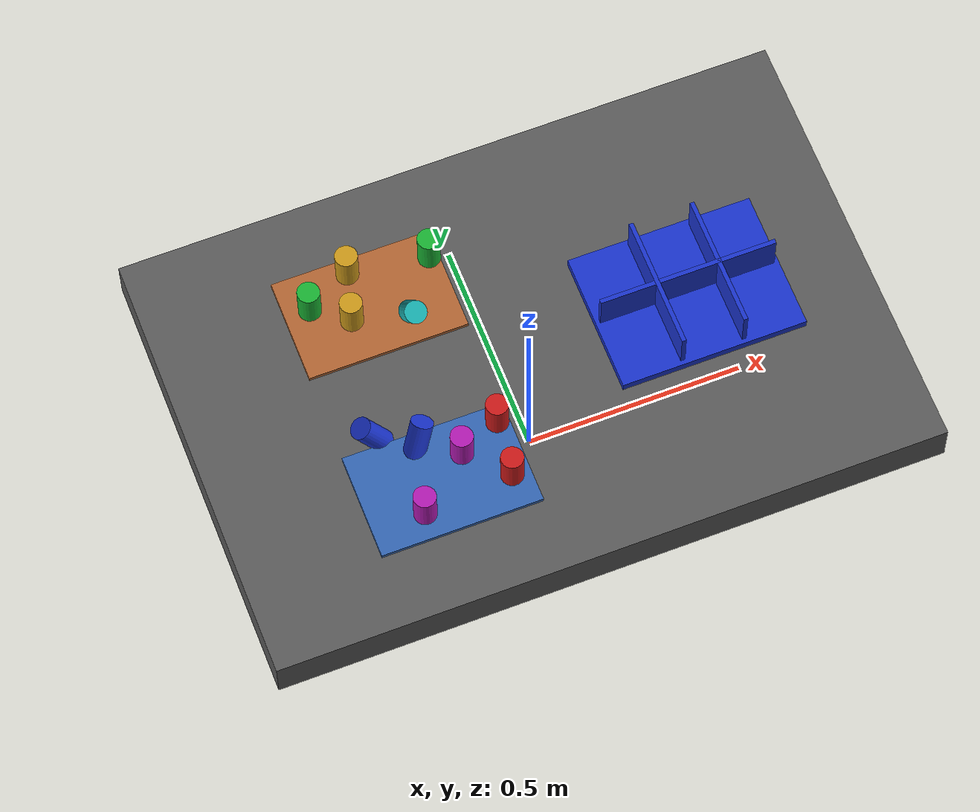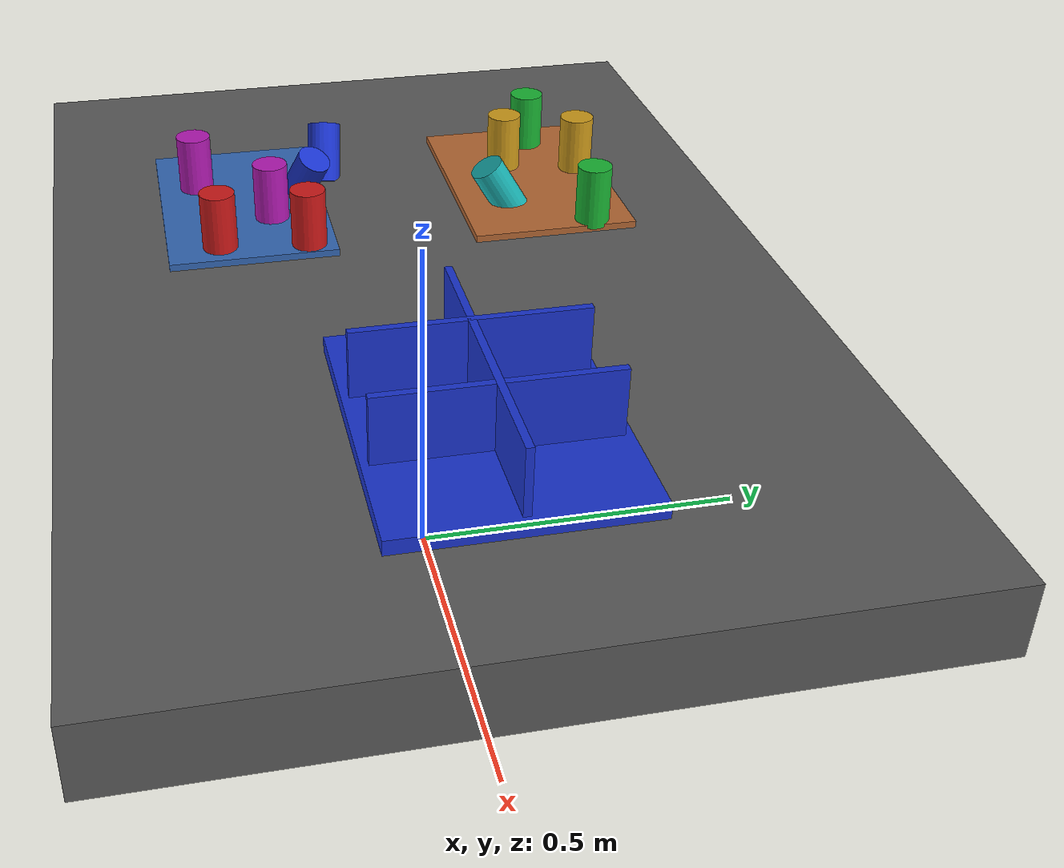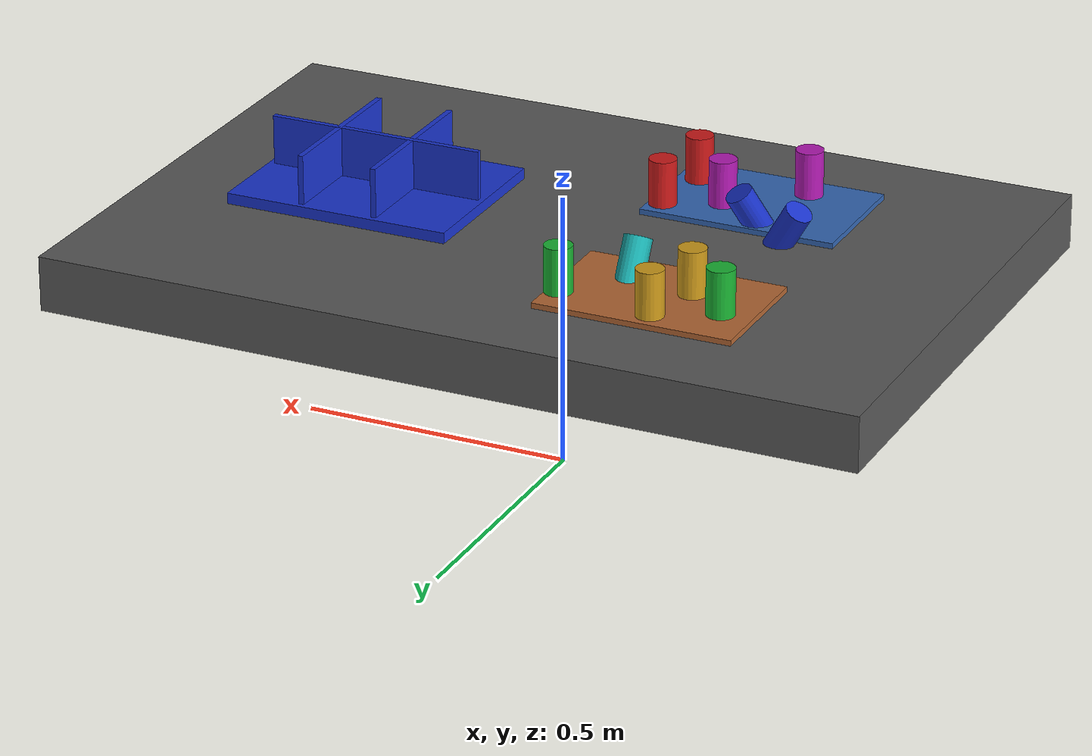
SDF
<?xml version="1.0" ?>
<sdf version="1.9">
  <!-- Standalone M1B scene.  The controller-backed Panda is spawned by the
       existing launch path; this file never alters the frozen M1A cube world. -->
  <world name="industrial_cylinder_v1">
    <physics name="bullet" type="bullet"><max_step_size>0.001</max_step_size><real_time_factor>1.0</real_time_factor></physics>
    <plugin name="gz::sim::systems::Physics" filename="gz-sim-physics-system"><engine><filename>gz-physics-bullet-featherstone-plugin</filename></engine></plugin>
    <plugin name="gz::sim::systems::UserCommands" filename="gz-sim-user-commands-system"/>
    <plugin name="gz::sim::systems::SceneBroadcaster" filename="gz-sim-scene-broadcaster-system"/>
    <plugin name="gz::sim::systems::Sensors" filename="gz-sim-sensors-system"><render_engine>ogre2</render_engine></plugin>
    <gravity>0 0 -9.81</gravity>
    <light type="directional" name="industrial_light"><pose>0 0 5 0 0 0</pose><direction>-0.3 0.2 -0.9</direction><diffuse>0.9 0.9 0.9 1</diffuse></light>
    <model name="industrial_work_table"><static>true</static><link name="link"><pose>0 0 0.4 0 0 0</pose><collision name="collision"><geometry><box><size>1.5 1.0 0.1</size></box></geometry></collision><visual name="visual"><geometry><box><size>1.5 1.0 0.1</size></box></geometry><material><diffuse>0.35 0.35 0.35 1</diffuse></material></visual></link></model>
    <model name="camera_fixture"><static>true</static><link name="camera_rgbd"><pose>-0.80 -0.80 1.40 0 0.77 0.93</pose><sensor name="front_rgbd" type="rgbd_camera"><always_on>1</always_on><update_rate>15</update_rate><topic>/xh/camera/rgbd</topic><camera><horizontal_fov>1.047</horizontal_fov><image><width>640</width><height>480</height><format>R8G8B8</format></image><clip><near>0.1</near><far>4.0</far></clip></camera></sensor></link></model>
    <model name="incoming_zone_a"><static>true</static><link name="link"><pose>-0.28 -0.22 0.455 0 0 0</pose><visual name="visual"><geometry><box><size>0.36 0.24 0.01</size></box></geometry><material><diffuse>0.2 0.4 0.7 1</diffuse></material></visual></link></model>
    <model name="incoming_zone_b"><static>true</static><link name="link"><pose>-0.28 0.22 0.455 0 0 0</pose><visual name="visual"><geometry><box><size>0.36 0.24 0.01</size></box></geometry><material><diffuse>0.7 0.4 0.2 1</diffuse></material></visual></link></model>
    <!-- M1B_RANDOM_PARTS_BEGIN -->
    <model name="cylinder_01"><pose>-0.1263 -0.1392 0.5000 0.0000 0.0000 1.6905</pose><link name="link"><inertial><mass>0.06</mass></inertial><collision name="collision"><geometry><cylinder><radius>0.025</radius><length>0.09</length></cylinder></geometry></collision><visual name="visual"><geometry><cylinder><radius>0.025</radius><length>0.09</length></cylinder></geometry><material><diffuse>0.800 0.100 0.100 1</diffuse><specular>0.15 0.15 0.15 1</specular></material></visual></link></model>
    <model name="cylinder_02"><pose>-0.1215 0.2790 0.5000 3.1416 0.0000 0.0378</pose><link name="link"><inertial><mass>0.06</mass></inertial><collision name="collision"><geometry><cylinder><radius>0.025</radius><length>0.09</length></cylinder></geometry></collision><visual name="visual"><geometry><cylinder><radius>0.025</radius><length>0.09</length></cylinder></geometry><material><diffuse>0.100 0.700 0.200 1</diffuse><specular>0.15 0.15 0.15 1</specular></material></visual></link></model>
    <model name="cylinder_03"><pose>-0.2985 -0.1240 0.4800 0.4500 -0.3000 2.8742</pose><link name="link"><inertial><mass>0.06</mass></inertial><collision name="collision"><geometry><cylinder><radius>0.025</radius><length>0.09</length></cylinder></geometry></collision><visual name="visual"><geometry><cylinder><radius>0.025</radius><length>0.09</length></cylinder></geometry><material><diffuse>0.100 0.200 0.800 1</diffuse><specular>0.15 0.15 0.15 1</specular></material></visual></link></model>
    <model name="cylinder_04"><pose>-0.3285 0.1953 0.5000 0.0000 0.0000 -2.7142</pose><link name="link"><inertial><mass>0.06</mass></inertial><collision name="collision"><geometry><cylinder><radius>0.025</radius><length>0.09</length></cylinder></geometry></collision><visual name="visual"><geometry><cylinder><radius>0.025</radius><length>0.09</length></cylinder></geometry><material><diffuse>0.800 0.600 0.100 1</diffuse><specular>0.15 0.15 0.15 1</specular></material></visual></link></model>
    <model name="cylinder_05"><pose>-0.3418 -0.2830 0.5000 3.1416 0.0000 2.6501</pose><link name="link"><inertial><mass>0.06</mass></inertial><collision name="collision"><geometry><cylinder><radius>0.025</radius><length>0.09</length></cylinder></geometry></collision><visual name="visual"><geometry><cylinder><radius>0.025</radius><length>0.09</length></cylinder></geometry><material><diffuse>0.700 0.100 0.700 1</diffuse><specular>0.15 0.15 0.15 1</specular></material></visual></link></model>
    <model name="cylinder_06"><pose>-0.2044 0.1605 0.4800 0.4500 -0.3000 0.5703</pose><link name="link"><inertial><mass>0.06</mass></inertial><collision name="collision"><geometry><cylinder><radius>0.025</radius><length>0.09</length></cylinder></geometry></collision><visual name="visual"><geometry><cylinder><radius>0.025</radius><length>0.09</length></cylinder></geometry><material><diffuse>0.100 0.700 0.700 1</diffuse><specular>0.15 0.15 0.15 1</specular></material></visual></link></model>
    <model name="cylinder_07"><pose>-0.1410 -0.2650 0.5000 0.0000 0.0000 0.6736</pose><link name="link"><inertial><mass>0.06</mass></inertial><collision name="collision"><geometry><cylinder><radius>0.025</radius><length>0.09</length></cylinder></geometry></collision><visual name="visual"><geometry><cylinder><radius>0.025</radius><length>0.09</length></cylinder></geometry><material><diffuse>0.800 0.100 0.100 1</diffuse><specular>0.15 0.15 0.15 1</specular></material></visual></link></model>
    <model name="cylinder_08"><pose>-0.4034 0.2508 0.5000 3.1416 0.0000 1.7590</pose><link name="link"><inertial><mass>0.06</mass></inertial><collision name="collision"><geometry><cylinder><radius>0.025</radius><length>0.09</length></cylinder></geometry></collision><visual name="visual"><geometry><cylinder><radius>0.025</radius><length>0.09</length></cylinder></geometry><material><diffuse>0.100 0.700 0.200 1</diffuse><specular>0.15 0.15 0.15 1</specular></material></visual></link></model>
    <model name="cylinder_09"><pose>-0.3850 -0.0803 0.4800 0.4500 -0.3000 -1.2166</pose><link name="link"><inertial><mass>0.06</mass></inertial><collision name="collision"><geometry><cylinder><radius>0.025</radius><length>0.09</length></cylinder></geometry></collision><visual name="visual"><geometry><cylinder><radius>0.025</radius><length>0.09</length></cylinder></geometry><material><diffuse>0.100 0.200 0.800 1</diffuse><specular>0.15 0.15 0.15 1</specular></material></visual></link></model>
    <model name="cylinder_10"><pose>-0.2992 0.3036 0.5000 0.0000 0.0000 2.5606</pose><link name="link"><inertial><mass>0.06</mass></inertial><collision name="collision"><geometry><cylinder><radius>0.025</radius><length>0.09</length></cylinder></geometry></collision><visual name="visual"><geometry><cylinder><radius>0.025</radius><length>0.09</length></cylinder></geometry><material><diffuse>0.800 0.600 0.100 1</diffuse><specular>0.15 0.15 0.15 1</specular></material></visual></link></model>
    <model name="cylinder_11"><pose>-0.2214 -0.1815 0.5000 3.1416 0.0000 -1.3300</pose><link name="link"><inertial><mass>0.06</mass></inertial><collision name="collision"><geometry><cylinder><radius>0.025</radius><length>0.09</length></cylinder></geometry></collision><visual name="visual"><geometry><cylinder><radius>0.025</radius><length>0.09</length></cylinder></geometry><material><diffuse>0.700 0.100 0.700 1</diffuse><specular>0.15 0.15 0.15 1</specular></material></visual></link></model>
    <!-- M1B_RANDOM_PARTS_END -->
    <model name="blue_partition_bin"><static>true</static><pose>0.36 0 0.45 0 0 0</pose><link name="link"><collision name="floor"><pose>0 0 0.01 0 0 0</pose><geometry><box><size>0.42 0.32 0.02</size></box></geometry></collision><visual name="floor_visual"><pose>0 0 0.01 0 0 0</pose><geometry><box><size>0.42 0.32 0.02</size></box></geometry><material><diffuse>0.1 0.2 0.8 1</diffuse></material></visual><visual name="row_divider"><pose>0 0 0.06 0 0 0</pose><geometry><box><size>0.40 0.01 0.10</size></box></geometry><material><diffuse>0.1 0.2 0.8 1</diffuse></material></visual><visual name="col_divider_a"><pose>-0.07 0 0.06 0 0 0</pose><geometry><box><size>0.01 0.30 0.10</size></box></geometry><material><diffuse>0.1 0.2 0.8 1</diffuse></material></visual><visual name="col_divider_b"><pose>0.07 0 0.06 0 0 0</pose><geometry><box><size>0.01 0.30 0.10</size></box></geometry><material><diffuse>0.1 0.2 0.8 1</diffuse></material></visual></link></model>
    <!-- Reserved only: second table, bin transport corridor, stackable-bin
         collision volume, and second arm mounting namespace. -->
  </world>
</sdf>
